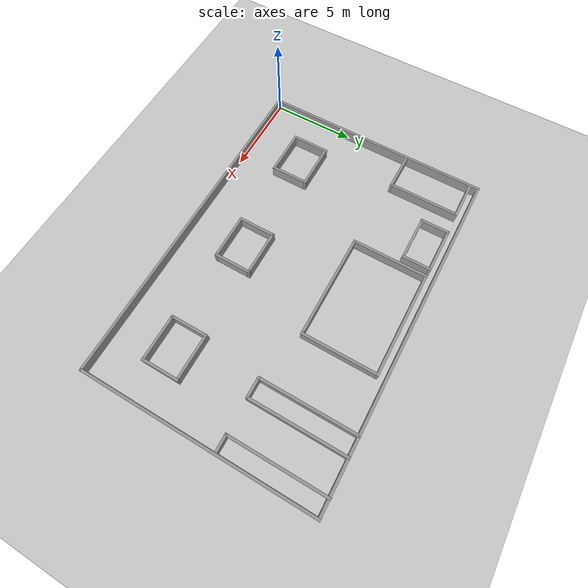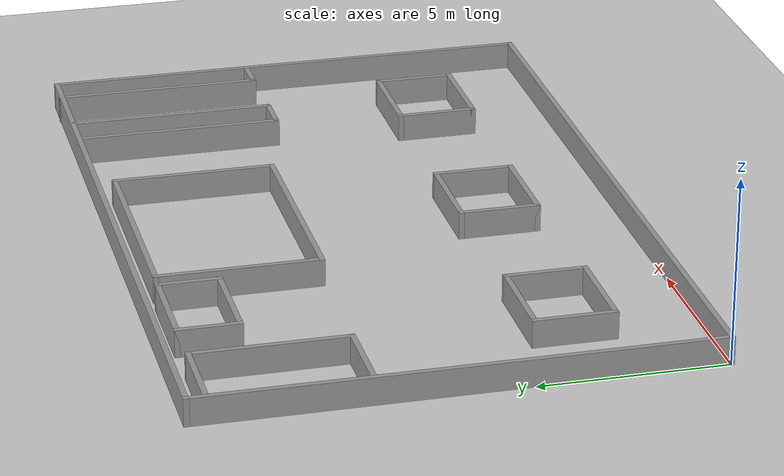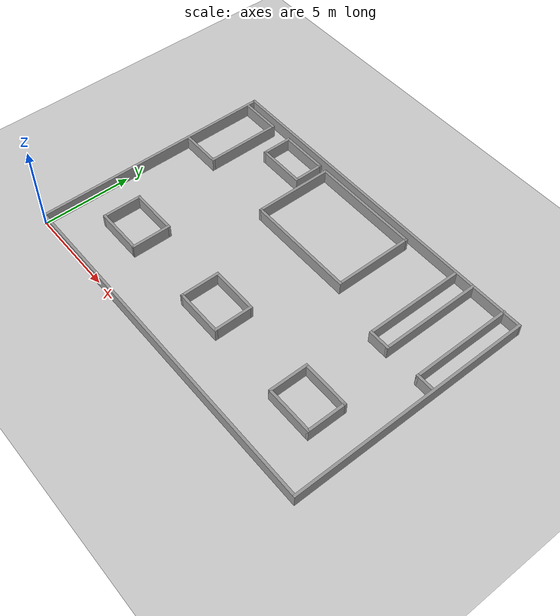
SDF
<?xml version='1.0' encoding='utf-8'?>
<sdf version="1.6">
    <world name="default">
        <scene>
            <grid>false</grid>
            <origin_visual>false</origin_visual>
        </scene>

        <!--Physics-->
        <gravity>0 0 -9.8</gravity>
        <magnetic_field>6e-06 2.3e-05 -4.2e-05</magnetic_field>
        <atmosphere type='adiabatic'/>
        <physics default="0" name="default_physics" type="ode">
            <max_step_size>0.004</max_step_size>
            <real_time_update_rate>250</real_time_update_rate>
            <solver>
                <iterations>20</iterations>
            </solver>
        </physics>

        <scene>
            <ambient>0.4 0.4 0.4 1</ambient>
            <background>0.7 0.7 0.7 1</background>
            <shadows>1</shadows>
        </scene>

        <!--World-->
        <model name='ground_plane'>
            <pose frame="">10.0 6.75 0 0 0 0</pose>
            <static>1</static>
            <link name='link'>
                <collision name='collision'>
                    <geometry>
                        <plane>
                            <normal>0 0 1</normal>
                            <size>20 13.5</size>
                        </plane>
                    </geometry>
                    <surface>
                        <friction>
                            <ode>
                                <mu>100</mu>
                                <mu2>50</mu2>
                            </ode>
                            <torsional>
                                <ode/>
                            </torsional>
                        </friction>
                        <contact>
                            <ode/>
                        </contact>
                        <bounce/>
                    </surface>
                    <max_contacts>10</max_contacts>
                </collision>
                <visual name='visual'>
                    <cast_shadows>0</cast_shadows>
                    <geometry>
                        <plane>
                            <normal>0 0 1</normal>
                            <size>20 13.5</size>
                        </plane>
                    </geometry>
                    <material>
                        <script>
                            <uri>file://media/materials/scripts/gazebo.material</uri>
                            <name>Gazebo/Grey</name>
                        </script>
                    </material>
                </visual>
                <self_collide>0</self_collide>
                <enable_wind>0</enable_wind>
                <kinematic>0</kinematic>
            </link>
        </model>

        <model name="warehouse_wall">
            <include>
                <uri>model://testbed_wall</uri>
            </include>
            <pose frame="">10.0 6.75 0 0 0 0</pose>
        </model>

        <light name='sun' type='directional'>
            <cast_shadows>1</cast_shadows>
            <pose>10.0 6.75 100 0 -0 0</pose>
            <diffuse>0.8 0.8 0.8 1</diffuse>
            <specular>0.2 0.2 0.2 1</specular>
            <attenuation>
                <range>1000</range>
                <constant>0.9</constant>
                <linear>0.01</linear>
                <quadratic>0.001</quadratic>
            </attenuation>
            <direction>-0.5 0.1 -0.9</direction>
            <spot>
                <inner_angle>0</inner_angle>
                <outer_angle>0</outer_angle>
                <falloff>0</falloff>
            </spot>
        </light>

        <!--Screen-->
        <gui fullscreen='0'>
            <camera name='user_camera'>
                <pose>-12.0162 -10.8508 10.8135 -0 0.583643 0.804195</pose>
                <view_controller>orbit</view_controller>
                <projection_type>perspective</projection_type>
            </camera>
        </gui>

    </world>
</sdf>

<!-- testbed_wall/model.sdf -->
<sdf version='1.7'>
  <model name='testbed_wall'>
    <pose>0.016054 0.050121 -0.875 0 -0 0</pose>
    <link name='Wall_0'>
      <collision name='Wall_0_Collision'>
        <geometry>
          <box>
            <size>13.75 0.15 0.75</size>
          </box>
        </geometry>
        <pose>0 0 1.25 0 -0 0</pose>
      </collision>
      <visual name='Wall_0_Visual'>
        <pose>0 0 1.25 0 -0 0</pose>
        <geometry>
          <box>
            <size>13.75 0.15 0.75</size>
          </box>
        </geometry>
        <material>
          <script>
            <uri>file://media/materials/scripts/gazebo.material</uri>
            <name>Gazebo/Grey</name>
          </script>
          <ambient>1 1 1 1</ambient>
        </material>
        <meta>
          <layer>0</layer>
        </meta>
      </visual>
      <pose>-9.925 -0.011258 0 0 -0 -1.5708</pose>
    </link>
    <link name='Wall_1'>
      <collision name='Wall_1_Collision'>
        <geometry>
          <box>
            <size>20 0.15 0.75</size>
          </box>
        </geometry>
        <pose>0 0 1.25 0 -0 0</pose>
      </collision>
      <visual name='Wall_1_Visual'>
        <pose>0 0 1.25 0 -0 0</pose>
        <geometry>
          <box>
            <size>20 0.15 0.75</size>
          </box>
        </geometry>
        <material>
          <script>
            <uri>file://media/materials/scripts/gazebo.material</uri>
            <name>Gazebo/Grey</name>
          </script>
          <ambient>1 1 1 1</ambient>
        </material>
        <meta>
          <layer>0</layer>
        </meta>
      </visual>
      <pose>-0 -6.81126 0 0 -0 0</pose>
    </link>
    <link name='Wall_10'>
      <collision name='Wall_10_Collision'>
        <geometry>
          <box>
            <size>6.25 0.15 0.75</size>
          </box>
        </geometry>
        <pose>0 0 1.25 0 -0 0</pose>
      </collision>
      <visual name='Wall_10_Visual'>
        <pose>0 0 1.25 0 -0 0</pose>
        <geometry>
          <box>
            <size>6.25 0.15 0.75</size>
          </box>
        </geometry>
        <material>
          <script>
            <uri>file://media/materials/scripts/gazebo.material</uri>
            <name>Gazebo/Grey</name>
          </script>
          <ambient>1 1 1 1</ambient>
        </material>
        <meta>
          <layer>0</layer>
        </meta>
      </visual>
      <pose>-0.22495 1.95994 0 0 -0 0</pose>
    </link>
    <link name='Wall_11'>
      <collision name='Wall_11_Collision'>
        <geometry>
          <box>
            <size>4.5 0.15 0.75</size>
          </box>
        </geometry>
        <pose>0 0 1.25 0 -0 0</pose>
      </collision>
      <visual name='Wall_11_Visual'>
        <pose>0 0 1.25 0 -0 0</pose>
        <geometry>
          <box>
            <size>4.5 0.15 0.75</size>
          </box>
        </geometry>
        <material>
          <script>
            <uri>file://media/materials/scripts/gazebo.material</uri>
            <name>Gazebo/Grey</name>
          </script>
          <ambient>1 1 1 1</ambient>
        </material>
        <meta>
          <layer>0</layer>
        </meta>
      </visual>
      <pose>2.82505 4.13494 0 0 -0 1.5708</pose>
    </link>
    <link name='Wall_12'>
      <collision name='Wall_12_Collision'>
        <geometry>
          <box>
            <size>6.25 0.15 0.75</size>
          </box>
        </geometry>
        <pose>0 0 1.25 0 -0 0</pose>
      </collision>
      <visual name='Wall_12_Visual'>
        <pose>0 0 1.25 0 -0 0</pose>
        <geometry>
          <box>
            <size>6.25 0.15 0.75</size>
          </box>
        </geometry>
        <material>
          <script>
            <uri>file://media/materials/scripts/gazebo.material</uri>
            <name>Gazebo/Grey</name>
          </script>
          <ambient>1 1 1 1</ambient>
        </material>
        <meta>
          <layer>0</layer>
        </meta>
      </visual>
      <pose>-0.22495 6.30994 0 0 -0 3.14159</pose>
    </link>
    <link name='Wall_14'>
      <collision name='Wall_14_Collision'>
        <geometry>
          <box>
            <size>1.75 0.15 0.75</size>
          </box>
        </geometry>
        <pose>0 0 1.25 0 -0 0</pose>
      </collision>
      <visual name='Wall_14_Visual'>
        <pose>0 0 1.25 0 -0 0</pose>
        <geometry>
          <box>
            <size>1.75 0.15 0.75</size>
          </box>
        </geometry>
        <material>
          <script>
            <uri>file://media/materials/scripts/gazebo.material</uri>
            <name>Gazebo/Grey</name>
          </script>
          <ambient>1 1 1 1</ambient>
        </material>
        <meta>
          <layer>0</layer>
        </meta>
      </visual>
      <pose>-6.36057 5.53654 0 0 -0 -1.5708</pose>
    </link>
    <link name='Wall_15'>
      <collision name='Wall_15_Collision'>
        <geometry>
          <box>
            <size>2.75 0.15 0.75</size>
          </box>
        </geometry>
        <pose>0 0 1.25 0 -0 0</pose>
      </collision>
      <visual name='Wall_15_Visual'>
        <pose>0 0 1.25 0 -0 0</pose>
        <geometry>
          <box>
            <size>2.75 0.15 0.75</size>
          </box>
        </geometry>
        <material>
          <script>
            <uri>file://media/materials/scripts/gazebo.material</uri>
            <name>Gazebo/Grey</name>
          </script>
          <ambient>1 1 1 1</ambient>
        </material>
        <meta>
          <layer>0</layer>
        </meta>
      </visual>
      <pose>-5.06057 4.73654 0 0 -0 0</pose>
    </link>
    <link name='Wall_16'>
      <collision name='Wall_16_Collision'>
        <geometry>
          <box>
            <size>1.75 0.15 0.75</size>
          </box>
        </geometry>
        <pose>0 0 1.25 0 -0 0</pose>
      </collision>
      <visual name='Wall_16_Visual'>
        <pose>0 0 1.25 0 -0 0</pose>
        <geometry>
          <box>
            <size>1.75 0.15 0.75</size>
          </box>
        </geometry>
        <material>
          <script>
            <uri>file://media/materials/scripts/gazebo.material</uri>
            <name>Gazebo/Grey</name>
          </script>
          <ambient>1 1 1 1</ambient>
        </material>
        <meta>
          <layer>0</layer>
        </meta>
      </visual>
      <pose>-3.76057 5.53654 0 0 -0 1.5708</pose>
    </link>
    <link name='Wall_17'>
      <collision name='Wall_17_Collision'>
        <geometry>
          <box>
            <size>2.75 0.15 0.75</size>
          </box>
        </geometry>
        <pose>0 0 1.25 0 -0 0</pose>
      </collision>
      <visual name='Wall_17_Visual'>
        <pose>0 0 1.25 0 -0 0</pose>
        <geometry>
          <box>
            <size>2.75 0.15 0.75</size>
          </box>
        </geometry>
        <material>
          <script>
            <uri>file://media/materials/scripts/gazebo.material</uri>
            <name>Gazebo/Grey</name>
          </script>
          <ambient>1 1 1 1</ambient>
        </material>
        <meta>
          <layer>0</layer>
        </meta>
      </visual>
      <pose>-5.06057 6.33654 0 0 -0 3.14159</pose>
    </link>
    <link name='Wall_19'>
      <collision name='Wall_19_Collision'>
        <geometry>
          <box>
            <size>2.25 0.15 0.75</size>
          </box>
        </geometry>
        <pose>0 0 1.25 0 -0 0</pose>
      </collision>
      <visual name='Wall_19_Visual'>
        <pose>0 0 1.25 0 -0 0</pose>
        <geometry>
          <box>
            <size>2.25 0.15 0.75</size>
          </box>
        </geometry>
        <material>
          <script>
            <uri>file://media/materials/scripts/gazebo.material</uri>
            <name>Gazebo/Grey</name>
          </script>
          <ambient>1 1 1 1</ambient>
        </material>
        <meta>
          <layer>0</layer>
        </meta>
      </visual>
      <pose>-8.73508 6.30156 0 0 -0 0</pose>
    </link>
    <link name='Wall_2'>
      <collision name='Wall_2_Collision'>
        <geometry>
          <box>
            <size>13.75 0.15 0.75</size>
          </box>
        </geometry>
        <pose>0 0 1.25 0 -0 0</pose>
      </collision>
      <visual name='Wall_2_Visual'>
        <pose>0 0 1.25 0 -0 0</pose>
        <geometry>
          <box>
            <size>13.75 0.15 0.75</size>
          </box>
        </geometry>
        <material>
          <script>
            <uri>file://media/materials/scripts/gazebo.material</uri>
            <name>Gazebo/Grey</name>
          </script>
          <ambient>1 1 1 1</ambient>
        </material>
        <meta>
          <layer>0</layer>
        </meta>
      </visual>
      <pose>9.925 -0.011258 0 0 -0 1.5708</pose>
    </link>
    <link name='Wall_21'>
      <collision name='Wall_21_Collision'>
        <geometry>
          <box>
            <size>4.25 0.15 0.75</size>
          </box>
        </geometry>
        <pose>0 0 1.25 0 -0 0</pose>
      </collision>
      <visual name='Wall_21_Visual'>
        <pose>0 0 1.25 0 -0 0</pose>
        <geometry>
          <box>
            <size>4.25 0.15 0.75</size>
          </box>
        </geometry>
        <material>
          <script>
            <uri>file://media/materials/scripts/gazebo.material</uri>
            <name>Gazebo/Grey</name>
          </script>
          <ambient>1 1 1 1</ambient>
        </material>
        <meta>
          <layer>0</layer>
        </meta>
      </visual>
      <pose>-7.68508 4.25156 0 0 -0 -1.5708</pose>
    </link>
    <link name='Wall_22'>
      <collision name='Wall_22_Collision'>
        <geometry>
          <box>
            <size>2.25 0.15 0.75</size>
          </box>
        </geometry>
        <pose>0 0 1.25 0 -0 0</pose>
      </collision>
      <visual name='Wall_22_Visual'>
        <pose>0 0 1.25 0 -0 0</pose>
        <geometry>
          <box>
            <size>2.25 0.15 0.75</size>
          </box>
        </geometry>
        <material>
          <script>
            <uri>file://media/materials/scripts/gazebo.material</uri>
            <name>Gazebo/Grey</name>
          </script>
          <ambient>1 1 1 1</ambient>
        </material>
        <meta>
          <layer>0</layer>
        </meta>
      </visual>
      <pose>-8.73508 2.20156 0 0 -0 3.14159</pose>
    </link>
    <link name='Wall_24'>
      <collision name='Wall_24_Collision'>
        <geometry>
          <box>
            <size>5.75 0.15 0.75</size>
          </box>
        </geometry>
        <pose>0 0 1.25 0 -0 0</pose>
      </collision>
      <visual name='Wall_24_Visual'>
        <pose>0 0 1.25 0 -0 0</pose>
        <geometry>
          <box>
            <size>5.75 0.15 0.75</size>
          </box>
        </geometry>
        <material>
          <script>
            <uri>file://media/materials/scripts/gazebo.material</uri>
            <name>Gazebo/Grey</name>
          </script>
          <ambient>1 1 1 1</ambient>
        </material>
        <meta>
          <layer>0</layer>
        </meta>
      </visual>
      <pose>5.87345 3.98466 0 0 -0 -1.5708</pose>
    </link>
    <link name='Wall_25'>
      <collision name='Wall_25_Collision'>
        <geometry>
          <box>
            <size>1.25 0.15 0.75</size>
          </box>
        </geometry>
        <pose>0 0 1.25 0 -0 0</pose>
      </collision>
      <visual name='Wall_25_Visual'>
        <pose>0 0 1.25 0 -0 0</pose>
        <geometry>
          <box>
            <size>1.25 0.15 0.75</size>
          </box>
        </geometry>
        <material>
          <script>
            <uri>file://media/materials/scripts/gazebo.material</uri>
            <name>Gazebo/Grey</name>
          </script>
          <ambient>1 1 1 1</ambient>
        </material>
        <meta>
          <layer>0</layer>
        </meta>
      </visual>
      <pose>6.42345 1.18466 0 0 -0 0</pose>
    </link>
    <link name='Wall_26'>
      <collision name='Wall_26_Collision'>
        <geometry>
          <box>
            <size>5.75 0.15 0.75</size>
          </box>
        </geometry>
        <pose>0 0 1.25 0 -0 0</pose>
      </collision>
      <visual name='Wall_26_Visual'>
        <pose>0 0 1.25 0 -0 0</pose>
        <geometry>
          <box>
            <size>5.75 0.15 0.75</size>
          </box>
        </geometry>
        <material>
          <script>
            <uri>file://media/materials/scripts/gazebo.material</uri>
            <name>Gazebo/Grey</name>
          </script>
          <ambient>1 1 1 1</ambient>
        </material>
        <meta>
          <layer>0</layer>
        </meta>
      </visual>
      <pose>6.97345 3.98466 0 0 -0 1.5708</pose>
    </link>
    <link name='Wall_28'>
      <collision name='Wall_28_Collision'>
        <geometry>
          <box>
            <size>5.75 0.15 0.75</size>
          </box>
        </geometry>
        <pose>0 0 1.25 0 -0 0</pose>
      </collision>
      <visual name='Wall_28_Visual'>
        <pose>0 0 1.25 0 -0 0</pose>
        <geometry>
          <box>
            <size>5.75 0.15 0.75</size>
          </box>
        </geometry>
        <material>
          <script>
            <uri>file://media/materials/scripts/gazebo.material</uri>
            <name>Gazebo/Grey</name>
          </script>
          <ambient>1 1 1 1</ambient>
        </material>
        <meta>
          <layer>0</layer>
        </meta>
      </visual>
      <pose>8.93247 4.01126 0 0 -0 -1.5708</pose>
    </link>
    <link name='Wall_29'>
      <collision name='Wall_29_Collision'>
        <geometry>
          <box>
            <size>1 0.15 0.75</size>
          </box>
        </geometry>
        <pose>0 0 1.25 0 -0 0</pose>
      </collision>
      <visual name='Wall_29_Visual'>
        <pose>0 0 1.25 0 -0 0</pose>
        <geometry>
          <box>
            <size>1 0.15 0.75</size>
          </box>
        </geometry>
        <material>
          <script>
            <uri>file://media/materials/scripts/gazebo.material</uri>
            <name>Gazebo/Grey</name>
          </script>
          <ambient>1 1 1 1</ambient>
        </material>
        <meta>
          <layer>0</layer>
        </meta>
      </visual>
      <pose>9.35747 1.21126 0 0 -0 0</pose>
    </link>
    <link name='Wall_3'>
      <collision name='Wall_3_Collision'>
        <geometry>
          <box>
            <size>20 0.15 0.75</size>
          </box>
        </geometry>
        <pose>0 0 1.25 0 -0 0</pose>
      </collision>
      <visual name='Wall_3_Visual'>
        <pose>0 0 1.25 0 -0 0</pose>
        <geometry>
          <box>
            <size>20 0.15 0.75</size>
          </box>
        </geometry>
        <material>
          <script>
            <uri>file://media/materials/scripts/gazebo.material</uri>
            <name>Gazebo/Grey</name>
          </script>
          <ambient>1 1 1 1</ambient>
        </material>
        <meta>
          <layer>0</layer>
        </meta>
      </visual>
      <pose>-0 6.78874 0 0 -0 3.14159</pose>
    </link>
    <link name='Wall_31'>
      <collision name='Wall_31_Collision'>
        <geometry>
          <box>
            <size>2.25 0.15 0.75</size>
          </box>
        </geometry>
        <pose>0 0 1.25 0 -0 0</pose>
      </collision>
      <visual name='Wall_31_Visual'>
        <pose>0 0 1.25 0 -0 0</pose>
        <geometry>
          <box>
            <size>2.25 0.15 0.75</size>
          </box>
        </geometry>
        <material>
          <script>
            <uri>file://media/materials/scripts/gazebo.material</uri>
            <name>Gazebo/Grey</name>
          </script>
          <ambient>1 1 1 1</ambient>
        </material>
        <meta>
          <layer>0</layer>
        </meta>
      </visual>
      <pose>-7.93206 -3.41581 0 0 -0 -1.5708</pose>
    </link>
    <link name='Wall_32'>
      <collision name='Wall_32_Collision'>
        <geometry>
          <box>
            <size>2.75 0.15 0.75</size>
          </box>
        </geometry>
        <pose>0 0 1.25 0 -0 0</pose>
      </collision>
      <visual name='Wall_32_Visual'>
        <pose>0 0 1.25 0 -0 0</pose>
        <geometry>
          <box>
            <size>2.75 0.15 0.75</size>
          </box>
        </geometry>
        <material>
          <script>
            <uri>file://media/materials/scripts/gazebo.material</uri>
            <name>Gazebo/Grey</name>
          </script>
          <ambient>1 1 1 1</ambient>
        </material>
        <meta>
          <layer>0</layer>
        </meta>
      </visual>
      <pose>-6.63205 -4.46581 0 0 -0 0</pose>
    </link>
    <link name='Wall_33'>
      <collision name='Wall_33_Collision'>
        <geometry>
          <box>
            <size>2.25 0.15 0.75</size>
          </box>
        </geometry>
        <pose>0 0 1.25 0 -0 0</pose>
      </collision>
      <visual name='Wall_33_Visual'>
        <pose>0 0 1.25 0 -0 0</pose>
        <geometry>
          <box>
            <size>2.25 0.15 0.75</size>
          </box>
        </geometry>
        <material>
          <script>
            <uri>file://media/materials/scripts/gazebo.material</uri>
            <name>Gazebo/Grey</name>
          </script>
          <ambient>1 1 1 1</ambient>
        </material>
        <meta>
          <layer>0</layer>
        </meta>
      </visual>
      <pose>-5.33205 -3.41581 0 0 -0 1.5708</pose>
    </link>
    <link name='Wall_34'>
      <collision name='Wall_34_Collision'>
        <geometry>
          <box>
            <size>2.75 0.15 0.75</size>
          </box>
        </geometry>
        <pose>0 0 1.25 0 -0 0</pose>
      </collision>
      <visual name='Wall_34_Visual'>
        <pose>0 0 1.25 0 -0 0</pose>
        <geometry>
          <box>
            <size>2.75 0.15 0.75</size>
          </box>
        </geometry>
        <material>
          <script>
            <uri>file://media/materials/scripts/gazebo.material</uri>
            <name>Gazebo/Grey</name>
          </script>
          <ambient>1 1 1 1</ambient>
        </material>
        <meta>
          <layer>0</layer>
        </meta>
      </visual>
      <pose>-6.63205 -2.36581 0 0 -0 3.14159</pose>
    </link>
    <link name='Wall_36'>
      <collision name='Wall_36_Collision'>
        <geometry>
          <box>
            <size>2.25 0.15 0.75</size>
          </box>
        </geometry>
        <pose>0 0 1.25 0 -0 0</pose>
      </collision>
      <visual name='Wall_36_Visual'>
        <pose>0 0 1.25 0 -0 0</pose>
        <geometry>
          <box>
            <size>2.25 0.15 0.75</size>
          </box>
        </geometry>
        <material>
          <script>
            <uri>file://media/materials/scripts/gazebo.material</uri>
            <name>Gazebo/Grey</name>
          </script>
          <ambient>1 1 1 1</ambient>
        </material>
        <meta>
          <layer>0</layer>
        </meta>
      </visual>
      <pose>-1.3618 -3.30941 0 0 -0 -1.5708</pose>
    </link>
    <link name='Wall_37'>
      <collision name='Wall_37_Collision'>
        <geometry>
          <box>
            <size>2.75 0.15 0.75</size>
          </box>
        </geometry>
        <pose>0 0 1.25 0 -0 0</pose>
      </collision>
      <visual name='Wall_37_Visual'>
        <pose>0 0 1.25 0 -0 0</pose>
        <geometry>
          <box>
            <size>2.75 0.15 0.75</size>
          </box>
        </geometry>
        <material>
          <script>
            <uri>file://media/materials/scripts/gazebo.material</uri>
            <name>Gazebo/Grey</name>
          </script>
          <ambient>1 1 1 1</ambient>
        </material>
        <meta>
          <layer>0</layer>
        </meta>
      </visual>
      <pose>-0.061805 -4.35941 0 0 -0 0</pose>
    </link>
    <link name='Wall_38'>
      <collision name='Wall_38_Collision'>
        <geometry>
          <box>
            <size>2.25 0.15 0.75</size>
          </box>
        </geometry>
        <pose>0 0 1.25 0 -0 0</pose>
      </collision>
      <visual name='Wall_38_Visual'>
        <pose>0 0 1.25 0 -0 0</pose>
        <geometry>
          <box>
            <size>2.25 0.15 0.75</size>
          </box>
        </geometry>
        <material>
          <script>
            <uri>file://media/materials/scripts/gazebo.material</uri>
            <name>Gazebo/Grey</name>
          </script>
          <ambient>1 1 1 1</ambient>
        </material>
        <meta>
          <layer>0</layer>
        </meta>
      </visual>
      <pose>1.23819 -3.30941 0 0 -0 1.5708</pose>
    </link>
    <link name='Wall_39'>
      <collision name='Wall_39_Collision'>
        <geometry>
          <box>
            <size>2.75 0.15 0.75</size>
          </box>
        </geometry>
        <pose>0 0 1.25 0 -0 0</pose>
      </collision>
      <visual name='Wall_39_Visual'>
        <pose>0 0 1.25 0 -0 0</pose>
        <geometry>
          <box>
            <size>2.75 0.15 0.75</size>
          </box>
        </geometry>
        <material>
          <script>
            <uri>file://media/materials/scripts/gazebo.material</uri>
            <name>Gazebo/Grey</name>
          </script>
          <ambient>1 1 1 1</ambient>
        </material>
        <meta>
          <layer>0</layer>
        </meta>
      </visual>
      <pose>-0.061805 -2.25941 0 0 -0 3.14159</pose>
    </link>
    <link name='Wall_4'>
      <collision name='Wall_4_Collision'>
        <geometry>
          <box>
            <size>13.75 0.15 0.75</size>
          </box>
        </geometry>
        <pose>0 0 1.25 0 -0 0</pose>
      </collision>
      <visual name='Wall_4_Visual'>
        <pose>0 0 1.25 0 -0 0</pose>
        <geometry>
          <box>
            <size>13.75 0.15 0.75</size>
          </box>
        </geometry>
        <material>
          <script>
            <uri>file://media/materials/scripts/gazebo.material</uri>
            <name>Gazebo/Grey</name>
          </script>
          <ambient>1 1 1 1</ambient>
        </material>
        <meta>
          <layer>0</layer>
        </meta>
      </visual>
      <pose>-9.925 -0.011258 0 0 -0 -1.5708</pose>
    </link>
    <link name='Wall_41'>
      <collision name='Wall_41_Collision'>
        <geometry>
          <box>
            <size>2.25 0.15 0.75</size>
          </box>
        </geometry>
        <pose>0 0 1.25 0 -0 0</pose>
      </collision>
      <visual name='Wall_41_Visual'>
        <pose>0 0 1.25 0 -0 0</pose>
        <geometry>
          <box>
            <size>2.25 0.15 0.75</size>
          </box>
        </geometry>
        <material>
          <script>
            <uri>file://media/materials/scripts/gazebo.material</uri>
            <name>Gazebo/Grey</name>
          </script>
          <ambient>1 1 1 1</ambient>
        </material>
        <meta>
          <layer>0</layer>
        </meta>
      </visual>
      <pose>5.36805 -3.36261 0 0 -0 -1.5708</pose>
    </link>
    <link name='Wall_42'>
      <collision name='Wall_42_Collision'>
        <geometry>
          <box>
            <size>2.75 0.15 0.75</size>
          </box>
        </geometry>
        <pose>0 0 1.25 0 -0 0</pose>
      </collision>
      <visual name='Wall_42_Visual'>
        <pose>0 0 1.25 0 -0 0</pose>
        <geometry>
          <box>
            <size>2.75 0.15 0.75</size>
          </box>
        </geometry>
        <material>
          <script>
            <uri>file://media/materials/scripts/gazebo.material</uri>
            <name>Gazebo/Grey</name>
          </script>
          <ambient>1 1 1 1</ambient>
        </material>
        <meta>
          <layer>0</layer>
        </meta>
      </visual>
      <pose>6.66805 -4.41261 0 0 -0 0</pose>
    </link>
    <link name='Wall_43'>
      <collision name='Wall_43_Collision'>
        <geometry>
          <box>
            <size>2.25 0.15 0.75</size>
          </box>
        </geometry>
        <pose>0 0 1.25 0 -0 0</pose>
      </collision>
      <visual name='Wall_43_Visual'>
        <pose>0 0 1.25 0 -0 0</pose>
        <geometry>
          <box>
            <size>2.25 0.15 0.75</size>
          </box>
        </geometry>
        <material>
          <script>
            <uri>file://media/materials/scripts/gazebo.material</uri>
            <name>Gazebo/Grey</name>
          </script>
          <ambient>1 1 1 1</ambient>
        </material>
        <meta>
          <layer>0</layer>
        </meta>
      </visual>
      <pose>7.96805 -3.36261 0 0 -0 1.5708</pose>
    </link>
    <link name='Wall_44'>
      <collision name='Wall_44_Collision'>
        <geometry>
          <box>
            <size>2.75 0.15 0.75</size>
          </box>
        </geometry>
        <pose>0 0 1.25 0 -0 0</pose>
      </collision>
      <visual name='Wall_44_Visual'>
        <pose>0 0 1.25 0 -0 0</pose>
        <geometry>
          <box>
            <size>2.75 0.15 0.75</size>
          </box>
        </geometry>
        <material>
          <script>
            <uri>file://media/materials/scripts/gazebo.material</uri>
            <name>Gazebo/Grey</name>
          </script>
          <ambient>1 1 1 1</ambient>
        </material>
        <meta>
          <layer>0</layer>
        </meta>
      </visual>
      <pose>6.66805 -2.31261 0 0 -0 3.14159</pose>
    </link>
    <link name='Wall_5'>
      <collision name='Wall_5_Collision'>
        <geometry>
          <box>
            <size>20 0.15 0.75</size>
          </box>
        </geometry>
        <pose>0 0 1.25 0 -0 0</pose>
      </collision>
      <visual name='Wall_5_Visual'>
        <pose>0 0 1.25 0 -0 0</pose>
        <geometry>
          <box>
            <size>20 0.15 0.75</size>
          </box>
        </geometry>
        <material>
          <script>
            <uri>file://media/materials/scripts/gazebo.material</uri>
            <name>Gazebo/Grey</name>
          </script>
          <ambient>1 1 1 1</ambient>
        </material>
        <meta>
          <layer>0</layer>
        </meta>
      </visual>
      <pose>-0 -6.81126 0 0 -0 0</pose>
    </link>
    <link name='Wall_6'>
      <collision name='Wall_6_Collision'>
        <geometry>
          <box>
            <size>13.75 0.15 0.75</size>
          </box>
        </geometry>
        <pose>0 0 1.25 0 -0 0</pose>
      </collision>
      <visual name='Wall_6_Visual'>
        <pose>0 0 1.25 0 -0 0</pose>
        <geometry>
          <box>
            <size>13.75 0.15 0.75</size>
          </box>
        </geometry>
        <material>
          <script>
            <uri>file://media/materials/scripts/gazebo.material</uri>
            <name>Gazebo/Grey</name>
          </script>
          <ambient>1 1 1 1</ambient>
        </material>
        <meta>
          <layer>0</layer>
        </meta>
      </visual>
      <pose>9.925 -0.011258 0 0 -0 1.5708</pose>
    </link>
    <link name='Wall_8'>
      <collision name='Wall_8_Collision'>
        <geometry>
          <box>
            <size>4.5 0.15 0.75</size>
          </box>
        </geometry>
        <pose>0 0 1.25 0 -0 0</pose>
      </collision>
      <visual name='Wall_8_Visual'>
        <pose>0 0 1.25 0 -0 0</pose>
        <geometry>
          <box>
            <size>4.5 0.15 0.75</size>
          </box>
        </geometry>
        <material>
          <script>
            <uri>file://media/materials/scripts/gazebo.material</uri>
            <name>Gazebo/Grey</name>
          </script>
          <ambient>1 1 1 1</ambient>
        </material>
        <meta>
          <layer>0</layer>
        </meta>
      </visual>
      <pose>-3.27495 4.13494 0 0 -0 -1.5708</pose>
    </link>
    <static>1</static>
  </model>
</sdf>
